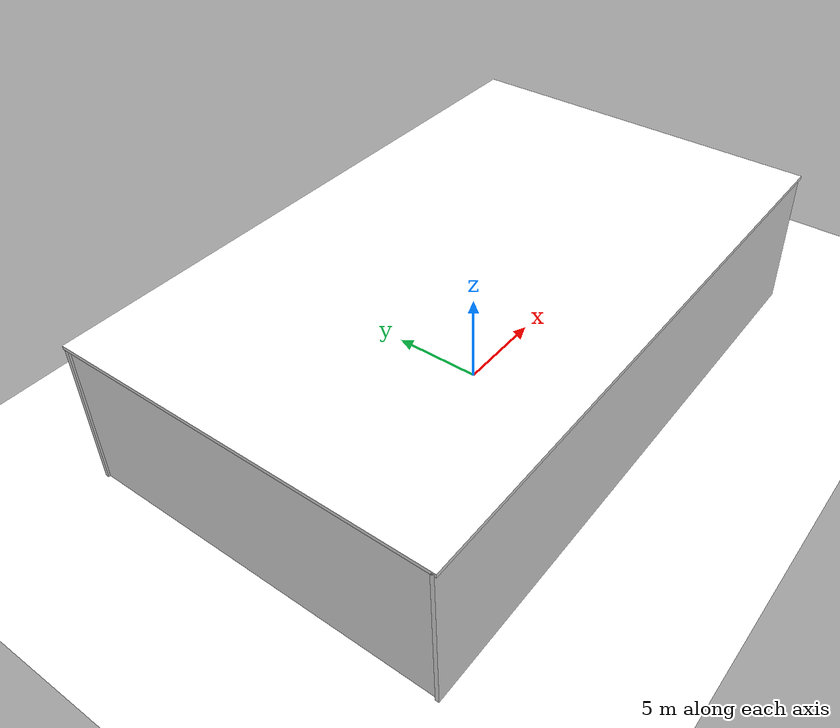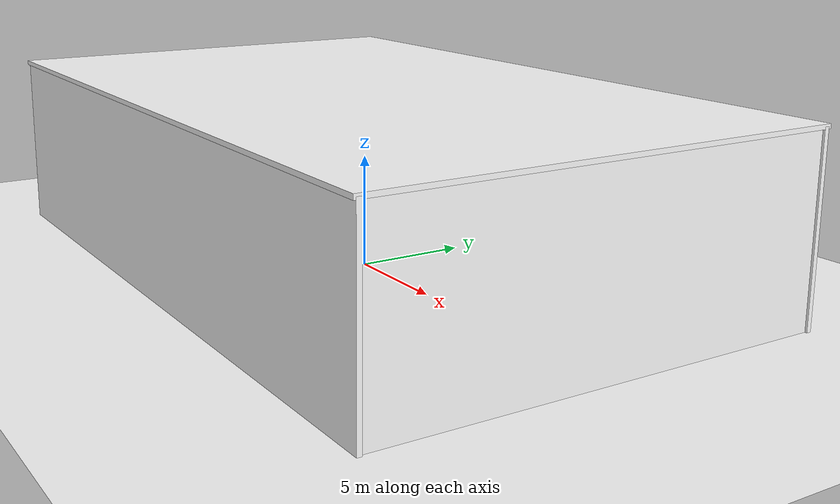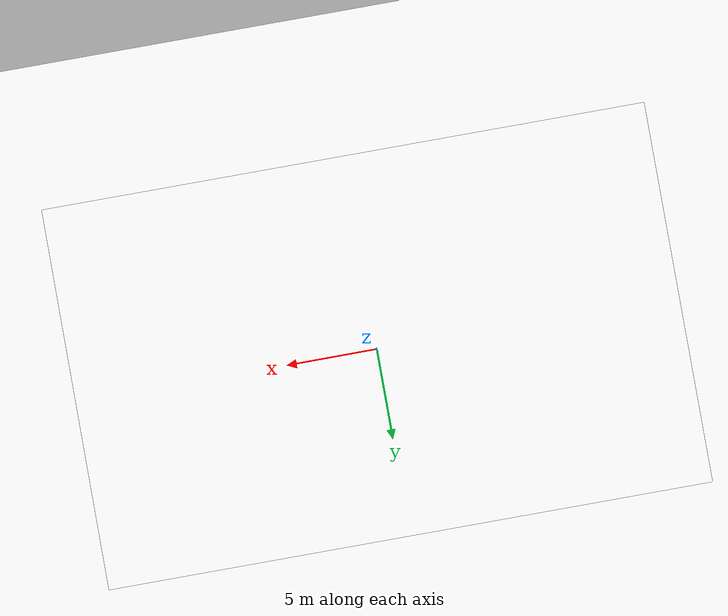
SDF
<sdf version="1.9">
 <world name="warehouse">
  <model name="ground_plane">
   <static>true</static>
   <link name="link">
    <collision name="collision">
     <geometry><plane><normal>0 0 1</normal><size>200 200</size></plane></geometry>
     <surface><friction><ode><mu>1.0</mu><mu2>1.0</mu2></ode></friction></surface>
    </collision>
    <visual name="visual">
     <geometry><plane><normal>0 0 1</normal><size>200 200</size></plane></geometry>
     <material>
      <ambient>0.5 0.5 0.5 1</ambient>
      <diffuse>1 1 1 1</diffuse>
      <pbr>
       <metal>
        <albedo_map>model://surfaces/materials/textures/floor.png</albedo_map>
        <metalness>0</metalness>
        <roughness>0.9</roughness>
       </metal>
      </pbr>
     </material>
    </visual>
   </link>
  </model>
  <model name="hall">
   <static>true</static>
   <link name="link">
    <visual name="wall_north_v">
     <pose>0 10 4 0 0 0</pose>
     <geometry><box><size>32.4 0.2 8</size></box></geometry>
     <material>
      <ambient>0.5 0.5 0.5 1</ambient>
      <diffuse>1 1 1 1</diffuse>
      <pbr>
       <metal>
        <albedo_map>model://surfaces/materials/textures/concrete.png</albedo_map>
        <metalness>0</metalness>
        <roughness>0.9</roughness>
       </metal>
      </pbr>
     </material>
    </visual>
    <collision name="wall_north_c">
     <pose>0 10 4 0 0 0</pose>
     <geometry><box><size>32.4 0.2 8</size></box></geometry>
    </collision>
    <visual name="wall_south_v">
     <pose>0 -10 4 0 0 0</pose>
     <geometry><box><size>32.4 0.2 8</size></box></geometry>
     <material>
      <ambient>0.5 0.5 0.5 1</ambient>
      <diffuse>1 1 1 1</diffuse>
      <pbr>
       <metal>
        <albedo_map>model://surfaces/materials/textures/concrete.png</albedo_map>
        <metalness>0</metalness>
        <roughness>0.9</roughness>
       </metal>
      </pbr>
     </material>
    </visual>
    <collision name="wall_south_c">
     <pose>0 -10 4 0 0 0</pose>
     <geometry><box><size>32.4 0.2 8</size></box></geometry>
    </collision>
    <visual name="wall_east_v">
     <pose>16 0 4 0 0 0</pose>
     <geometry><box><size>0.2 20 8</size></box></geometry>
     <material>
      <ambient>0.5 0.5 0.5 1</ambient>
      <diffuse>1 1 1 1</diffuse>
      <pbr>
       <metal>
        <albedo_map>model://surfaces/materials/textures/concrete.png</albedo_map>
        <metalness>0</metalness>
        <roughness>0.9</roughness>
       </metal>
      </pbr>
     </material>
    </visual>
    <collision name="wall_east_c">
     <pose>16 0 4 0 0 0</pose>
     <geometry><box><size>0.2 20 8</size></box></geometry>
    </collision>
    <visual name="wall_west_v">
     <pose>-16 0 4 0 0 0</pose>
     <geometry><box><size>0.2 20 8</size></box></geometry>
     <material>
      <ambient>0.5 0.5 0.5 1</ambient>
      <diffuse>1 1 1 1</diffuse>
      <pbr>
       <metal>
        <albedo_map>model://surfaces/materials/textures/concrete.png</albedo_map>
        <metalness>0</metalness>
        <roughness>0.9</roughness>
       </metal>
      </pbr>
     </material>
    </visual>
    <collision name="wall_west_c">
     <pose>-16 0 4 0 0 0</pose>
     <geometry><box><size>0.2 20 8</size></box></geometry>
    </collision>
    <visual name="roof_v">
     <pose>0 0 8 0 0 0</pose>
     <geometry><box><size>32.4 20.4 0.2</size></box></geometry>
     <material>
      <ambient>0.5 0.5 0.5 1</ambient>
      <diffuse>1 1 1 1</diffuse>
      <pbr>
       <metal>
        <albedo_map>model://surfaces/materials/textures/concrete.png</albedo_map>
        <metalness>0</metalness>
        <roughness>0.9</roughness>
       </metal>
      </pbr>
     </material>
    </visual>
    <collision name="roof_c">
     <pose>0 0 8 0 0 0</pose>
     <geometry><box><size>32.4 20.4 0.2</size></box></geometry>
    </collision>
    <visual name="band_0_s_v">
     <pose>-14 -9.89 2 0 0 0</pose>
     <geometry><box><size>0.6 0.02 3</size></box></geometry>
     <material><ambient>0.31 0.225 0.14 1</ambient><diffuse>0.62 0.45 0.28 1</diffuse></material>
    </visual>
    <visual name="band_0_n_v">
     <pose>-14 9.89 2 0 0 0</pose>
     <geometry><box><size>0.6 0.02 3</size></box></geometry>
     <material><ambient>0.31 0.225 0.14 1</ambient><diffuse>0.62 0.45 0.28 1</diffuse></material>
    </visual>
    <visual name="band_1_s_v">
     <pose>-10 -9.89 2 0 0 0</pose>
     <geometry><box><size>0.6 0.02 3</size></box></geometry>
     <material><ambient>0.35 0.26 0.16 1</ambient><diffuse>0.7 0.52 0.32 1</diffuse></material>
    </visual>
    <visual name="band_1_n_v">
     <pose>-10 9.89 2 0 0 0</pose>
     <geometry><box><size>0.6 0.02 3</size></box></geometry>
     <material><ambient>0.35 0.26 0.16 1</ambient><diffuse>0.7 0.52 0.32 1</diffuse></material>
    </visual>
    <visual name="band_2_s_v">
     <pose>-6 -9.89 2 0 0 0</pose>
     <geometry><box><size>0.6 0.02 3</size></box></geometry>
     <material><ambient>0.275 0.19 0.11 1</ambient><diffuse>0.55 0.38 0.22 1</diffuse></material>
    </visual>
    <visual name="band_2_n_v">
     <pose>-6 9.89 2 0 0 0</pose>
     <geometry><box><size>0.6 0.02 3</size></box></geometry>
     <material><ambient>0.275 0.19 0.11 1</ambient><diffuse>0.55 0.38 0.22 1</diffuse></material>
    </visual>
    <visual name="band_3_s_v">
     <pose>-2 -9.89 2 0 0 0</pose>
     <geometry><box><size>0.6 0.02 3</size></box></geometry>
     <material><ambient>0.15 0.21 0.31 1</ambient><diffuse>0.3 0.42 0.62 1</diffuse></material>
    </visual>
    <visual name="band_3_n_v">
     <pose>-2 9.89 2 0 0 0</pose>
     <geometry><box><size>0.6 0.02 3</size></box></geometry>
     <material><ambient>0.15 0.21 0.31 1</ambient><diffuse>0.3 0.42 0.62 1</diffuse></material>
    </visual>
    <visual name="band_4_s_v">
     <pose>2 -9.89 2 0 0 0</pose>
     <geometry><box><size>0.6 0.02 3</size></box></geometry>
     <material><ambient>0.33 0.12 0.11 1</ambient><diffuse>0.66 0.24 0.22 1</diffuse></material>
    </visual>
    <visual name="band_4_n_v">
     <pose>2 9.89 2 0 0 0</pose>
     <geometry><box><size>0.6 0.02 3</size></box></geometry>
     <material><ambient>0.33 0.12 0.11 1</ambient><diffuse>0.66 0.24 0.22 1</diffuse></material>
    </visual>
    <visual name="band_5_s_v">
     <pose>6 -9.89 2 0 0 0</pose>
     <geometry><box><size>0.6 0.02 3</size></box></geometry>
     <material><ambient>0.14 0.26 0.18 1</ambient><diffuse>0.28 0.52 0.36 1</diffuse></material>
    </visual>
    <visual name="band_5_n_v">
     <pose>6 9.89 2 0 0 0</pose>
     <geometry><box><size>0.6 0.02 3</size></box></geometry>
     <material><ambient>0.14 0.26 0.18 1</ambient><diffuse>0.28 0.52 0.36 1</diffuse></material>
    </visual>
    <visual name="band_6_s_v">
     <pose>10 -9.89 2 0 0 0</pose>
     <geometry><box><size>0.6 0.02 3</size></box></geometry>
     <material><ambient>0.31 0.225 0.14 1</ambient><diffuse>0.62 0.45 0.28 1</diffuse></material>
    </visual>
    <visual name="band_6_n_v">
     <pose>10 9.89 2 0 0 0</pose>
     <geometry><box><size>0.6 0.02 3</size></box></geometry>
     <material><ambient>0.31 0.225 0.14 1</ambient><diffuse>0.62 0.45 0.28 1</diffuse></material>
    </visual>
    <visual name="band_7_s_v">
     <pose>14 -9.89 2 0 0 0</pose>
     <geometry><box><size>0.6 0.02 3</size></box></geometry>
     <material><ambient>0.35 0.26 0.16 1</ambient><diffuse>0.7 0.52 0.32 1</diffuse></material>
    </visual>
    <visual name="band_7_n_v">
     <pose>14 9.89 2 0 0 0</pose>
     <geometry><box><size>0.6 0.02 3</size></box></geometry>
     <material><ambient>0.35 0.26 0.16 1</ambient><diffuse>0.7 0.52 0.32 1</diffuse></material>
    </visual>
   </link>
  </model>
 </world>
</sdf>
